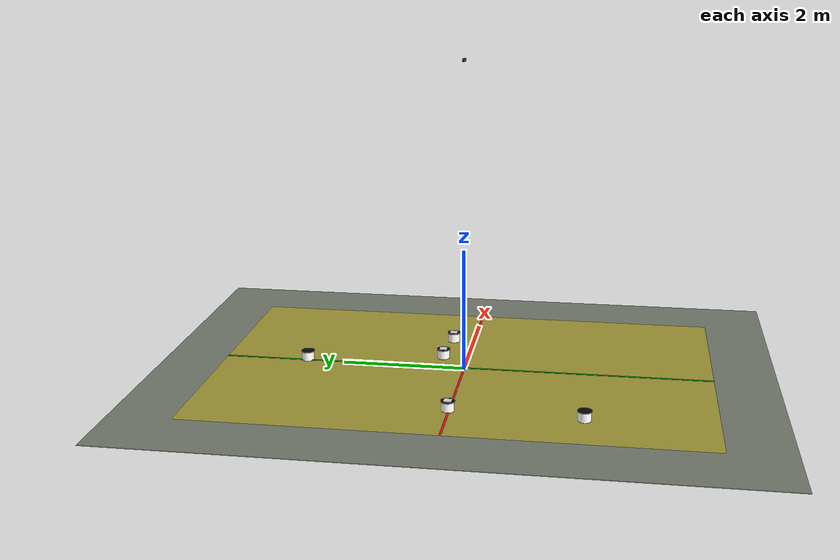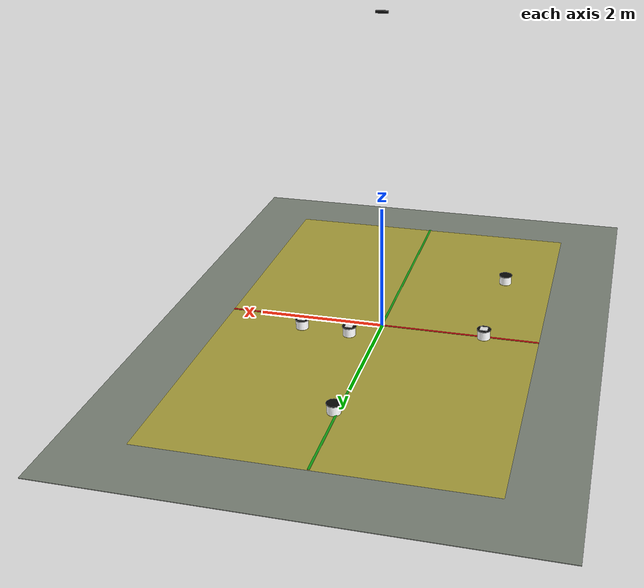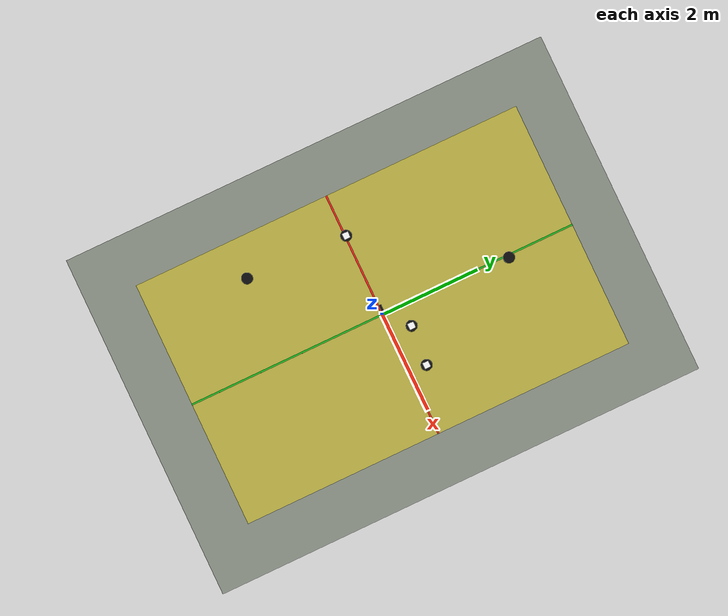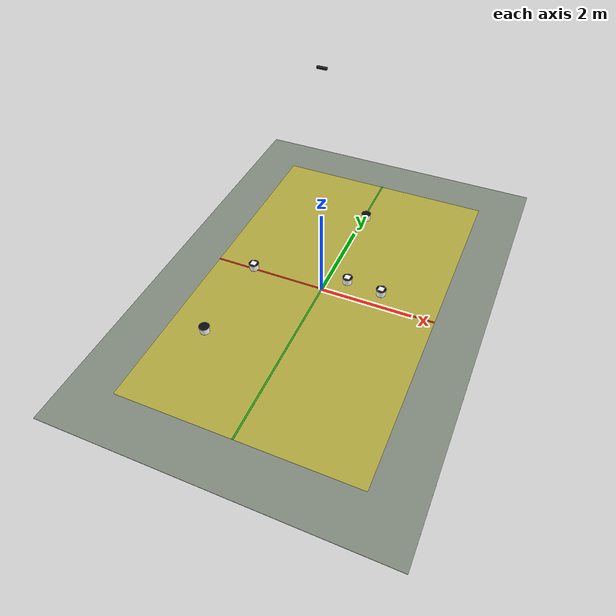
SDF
<?xml version="1.0"?>
    <sdf version="1.9">
      <world name="hazard_recognition_single">
        <physics name="1ms" type="ignore">
          <max_step_size>0.001</max_step_size>
          <real_time_factor>1.0</real_time_factor>
        </physics>

        <plugin filename="gz-sim-physics-system" name="gz::sim::systems::Physics"/>
        <plugin filename="gz-sim-sensors-system" name="gz::sim::systems::Sensors">
          <render_engine>ogre2</render_engine>
        </plugin>
        <plugin filename="gz-sim-user-commands-system" name="gz::sim::systems::UserCommands"/>
        <plugin filename="gz-sim-scene-broadcaster-system" name="gz::sim::systems::SceneBroadcaster"/>

        <scene>
          <ambient>1.0 1.0 1.0</ambient>
          <background>0.78 0.80 0.82</background>
          <sky/>
        </scene>

        <light type="directional" name="sun">
          <pose>0 0 20 0 0 0</pose>
          <diffuse>0.9 0.9 0.85 1</diffuse>
          <specular>0.6 0.6 0.6 1</specular>
          <direction>-0.4 0.2 -0.9</direction>
        </light>

        <include>
  <name>recognition_field</name>
  <uri>model://recognition_field</uri>
  <pose>0 0 0 0 0 0.0</pose>
</include>
<include>
  <name>static_d435i_camera</name>
  <uri>model://static_d435i_camera</uri>
  <pose>0.0 0.0 5.0 0 0 0.0</pose>
</include>
<include>
  <name>recon_1</name>
  <uri>model://recon_bucket</uri>
  <pose>-1.64 0.02 0.0 0 0 0.0</pose>
</include>
<include>
  <name>recon_2</name>
  <uri>model://recon_bucket</uri>
  <pose>0.05 2.63 0.0 0 0 0.0</pose>
</include>
<include>
  <name>recon_3</name>
  <uri>model://recon_bucket</uri>
  <pose>-1.71 -2.02 0.0 0 0 0.0</pose>
</include>
<include>
  <name>recon_4</name>
  <uri>model://recon_bucket</uri>
  <pose>0.43 0.41 0.0 0 0 0.0</pose>
</include>
<include>
  <name>recon_5</name>
  <uri>model://recon_bucket</uri>
  <pose>1.22 0.35 0.0 0 0 0.0</pose>
</include>
<model name="marker_explosive_recon_4">
  <static>true</static>
  <pose>0.43 0.41 0.165 0 0 3.14159265359</pose>
  <link name="link">
    <visual name="marker">
      <geometry>
        <box>
          <size>0.12 0.12 0.004</size>
        </box>
      </geometry>
      <material>
        <diffuse>1 1 1 1</diffuse>
        <pbr>
          <metal>
            <albedo_map>model://hazard_marker/materials/textures/explosive.png</albedo_map>
            <roughness>0.65</roughness>
            <metalness>0</metalness>
          </metal>
        </pbr>
      </material>
    </visual>
  </link>
</model>
<model name="marker_nonflammable_gas_recon_5">
  <static>true</static>
  <pose>1.22 0.35 0.165 0 0 0.0</pose>
  <link name="link">
    <visual name="marker">
      <geometry>
        <box>
          <size>0.12 0.12 0.004</size>
        </box>
      </geometry>
      <material>
        <diffuse>1 1 1 1</diffuse>
        <pbr>
          <metal>
            <albedo_map>model://hazard_marker/materials/textures/nonflammable_gas.png</albedo_map>
            <roughness>0.65</roughness>
            <metalness>0</metalness>
          </metal>
        </pbr>
      </material>
    </visual>
  </link>
</model>
<model name="marker_spontaneously_combustible_recon_1">
  <static>true</static>
  <pose>-1.64 0.02 0.165 0 0 -1.57079632679</pose>
  <link name="link">
    <visual name="marker">
      <geometry>
        <box>
          <size>0.12 0.12 0.004</size>
        </box>
      </geometry>
      <material>
        <diffuse>1 1 1 1</diffuse>
        <pbr>
          <metal>
            <albedo_map>model://hazard_marker/materials/textures/spontaneously_combustible.png</albedo_map>
            <roughness>0.65</roughness>
            <metalness>0</metalness>
          </metal>
        </pbr>
      </material>
    </visual>
  </link>
</model>
      </world>
    </sdf>

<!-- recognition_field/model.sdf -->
<sdf version="1.9">
  <model name="recognition_field">
    <static>true</static>
    <link name="link">
      <visual name="ground">
        <pose>0 0 -0.006 0 0 0</pose>
        <geometry><box><size>7 10 0.01</size></box></geometry>
        <material><ambient>0.54 0.57 0.52 1</ambient><diffuse>0.54 0.57 0.52 1</diffuse></material>
      </visual>
      <visual name="recognition_area">
        <pose>0 0 0.002 0 0 0</pose>
        <geometry><box><size>5 8 0.004</size></box></geometry>
        <material><ambient>0.95 0.85 0.10 0.55</ambient><diffuse>0.95 0.85 0.10 0.55</diffuse></material>
      </visual>
      <visual name="x_axis">
        <pose>0 0 0.012 0 0 0</pose>
        <geometry><box><size>5 0.035 0.006</size></box></geometry>
        <material><ambient>1 0.1 0.1 1</ambient><diffuse>1 0.1 0.1 1</diffuse></material>
      </visual>
      <visual name="y_axis">
        <pose>0 0 0.014 0 0 0</pose>
        <geometry><box><size>0.035 8 0.006</size></box></geometry>
        <material><ambient>0.1 0.7 0.1 1</ambient><diffuse>0.1 0.7 0.1 1</diffuse></material>
      </visual>
    </link>
  </model>
</sdf>

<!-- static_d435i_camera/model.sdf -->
<sdf version="1.9">
  <model name="static_d435i_camera">
    <static>true</static>
    <link name="camera_link">
      <visual name="body">
        <geometry><box><size>0.18 0.04 0.04</size></box></geometry>
        <material><ambient>0.05 0.05 0.05 1</ambient><diffuse>0.05 0.05 0.05 1</diffuse></material>
      </visual>
      <sensor name="hazard_d435i_rgbd" type="rgbd_camera">
        <pose>0 0 0 0 1.57079632679 0</pose>
        <always_on>1</always_on>
        <update_rate>30</update_rate>
        <topic>/hazard_d435i</topic>
        <camera>
          <horizontal_fov>1.5</horizontal_fov>
          <image>
            <width>848</width>
            <height>480</height>
            <format>R8G8B8</format>
          </image>
          <clip>
            <near>0.05</near>
            <far>20.0</far>
          </clip>
        </camera>
      </sensor>
    </link>
  </model>
</sdf>

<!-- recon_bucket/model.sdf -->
<sdf version="1.9">
  <model name="recon_bucket">
    <static>true</static>
    <link name="link">
      <visual name="body">
        <pose>0 0 0.075 0 0 0</pose>
        <geometry><cylinder><radius>0.10</radius><length>0.15</length></cylinder></geometry>
        <material><ambient>1 1 1 1</ambient><diffuse>1 1 1 1</diffuse></material>
      </visual>
      <visual name="rim">
        <pose>0 0 0.155 0 0 0</pose>
        <geometry><cylinder><radius>0.112</radius><length>0.01</length></cylinder></geometry>
        <material><ambient>0.05 0.05 0.05 1</ambient><diffuse>0.05 0.05 0.05 1</diffuse></material>
      </visual>
      <collision name="collision">
        <pose>0 0 0.075 0 0 0</pose>
        <geometry><cylinder><radius>0.10</radius><length>0.15</length></cylinder></geometry>
      </collision>
    </link>
  </model>
</sdf>
